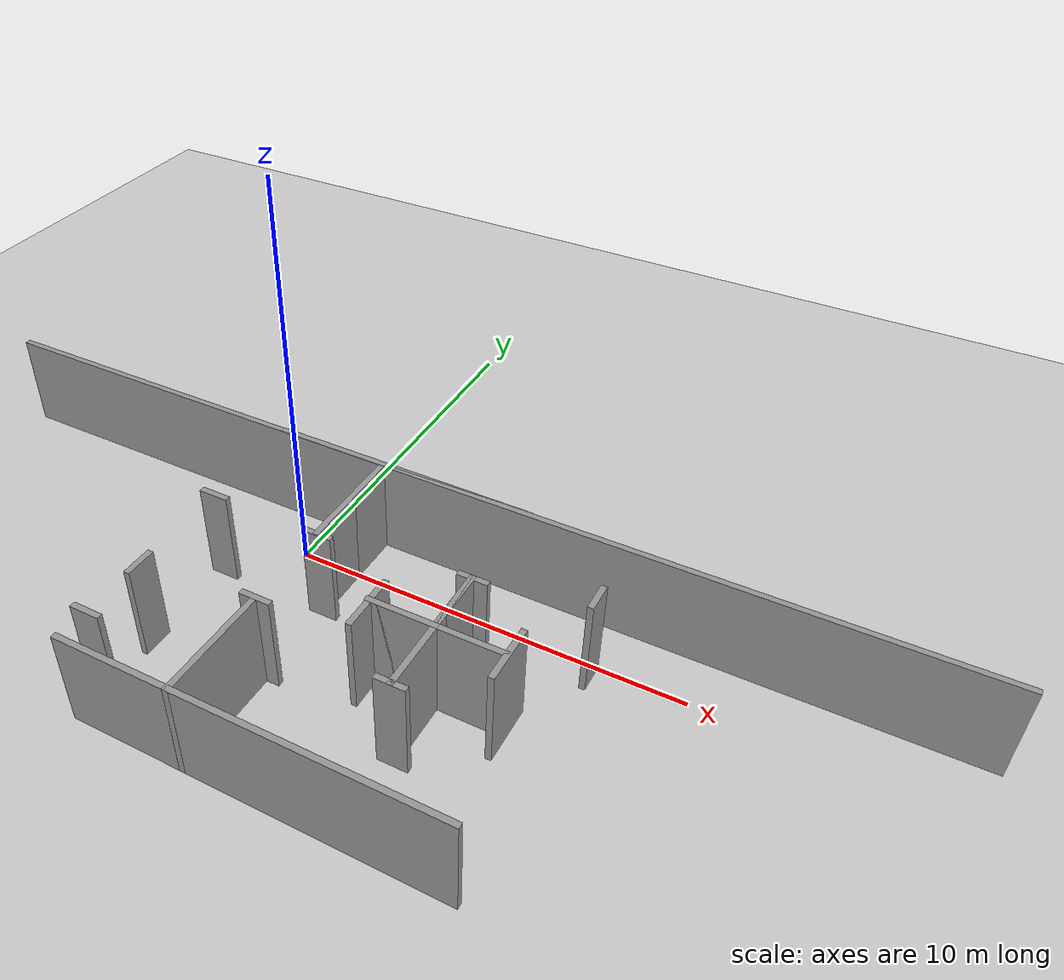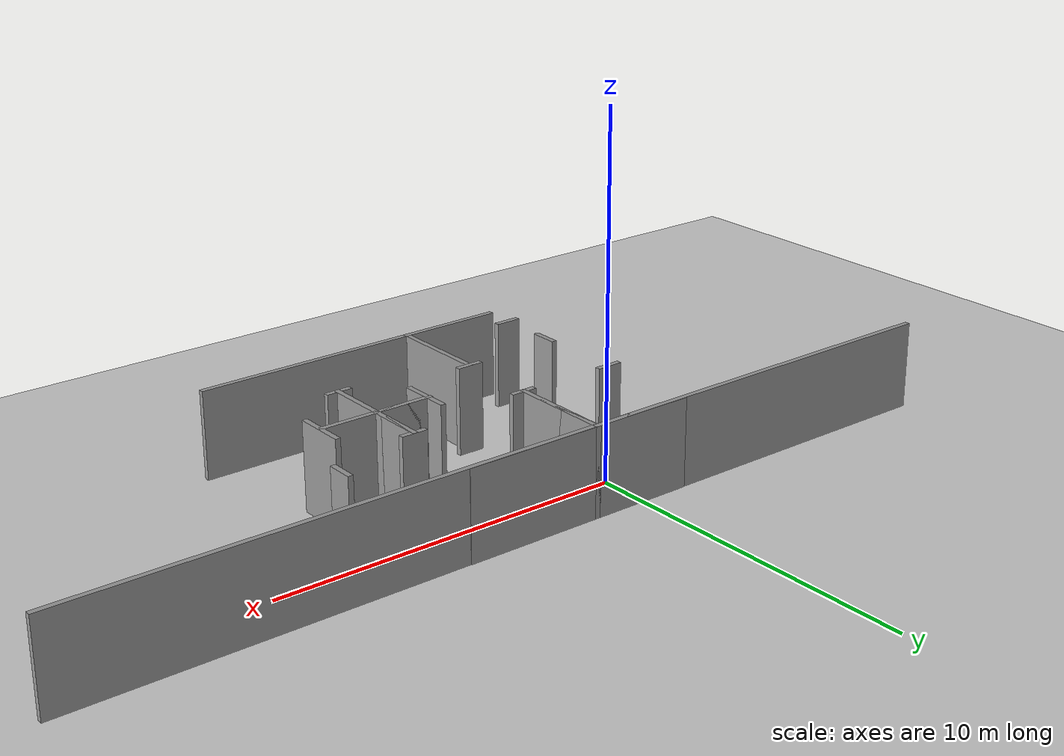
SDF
<sdf version="1.7">
 <world name="default">
  <model name="ground_plane">
   <static>1</static>
   <link name="link">
    <collision name="collision">
     <geometry><plane><normal>0 0 1</normal><size>100 100</size></plane></geometry>
     <surface>
      <contact><collide_bitmask>65535</collide_bitmask></contact>
      <friction><ode><mu>100</mu><mu2>50</mu2></ode></friction>
     </surface>
    </collision>
    <visual name="visual">
     <cast_shadows>0</cast_shadows>
     <geometry><plane><normal>0 0 1</normal><size>100 100</size></plane></geometry>
     <material>
      <script><uri>file://media/materials/scripts/gazebo.material</uri><name>Gazebo/Grey</name></script>
     </material>
    </visual>
   </link>
  </model>
  <model name="test_office_top">
   <link name="Wall_101">
    <pose>-2.48394 -1.15101 0 0 -0 0</pose>
    <visual name="Wall_101_Visual">
     <pose>0 0 1.25 0 -0 0</pose>
     <geometry><box><size>0.76749 0.15 2.5</size></box></geometry>
     <material>
      <script><uri>file://media/materials/scripts/gazebo.material</uri><name>Gazebo/Grey</name></script>
      <ambient>1 1 1 1</ambient>
      <shader type="pixel"/>
     </material>
     <meta><layer>0</layer></meta>
    </visual>
    <collision name="Wall_101_Collision">
     <pose>0 0 1.25 0 -0 0</pose>
     <geometry><box><size>0.76749 0.15 2.5</size></box></geometry>
     <surface>
      <friction>
       <ode><mu>1</mu><mu2>1</mu2><fdir1>0 0 0</fdir1><slip1>0</slip1><slip2>0</slip2></ode>
       <torsional>
        <coefficient>1</coefficient>
        <patch_radius>0</patch_radius>
        <surface_radius>0</surface_radius>
        <use_patch_radius>1</use_patch_radius>
        <ode><slip>0</slip></ode>
       </torsional>
      </friction>
      <bounce><restitution_coefficient>0</restitution_coefficient><threshold>1e+06</threshold></bounce>
      <contact>
       <collide_without_contact>0</collide_without_contact>
       <collide_without_contact_bitmask>1</collide_without_contact_bitmask>
       <collide_bitmask>1</collide_bitmask>
       <ode>
        <soft_cfm>0</soft_cfm>
        <soft_erp>0.2</soft_erp>
        <kp>1e+13</kp>
        <kd>1</kd>
        <max_vel>0.01</max_vel>
        <min_depth>0</min_depth>
       </ode>
       <bullet>
        <split_impulse>1</split_impulse>
        <split_impulse_penetration_threshold>-0.01</split_impulse_penetration_threshold>
        <soft_cfm>0</soft_cfm>
        <soft_erp>0.2</soft_erp>
        <kp>1e+13</kp>
        <kd>1</kd>
       </bullet>
      </contact>
     </surface>
    </collision>
   </link>
   <link name="Wall_103">
    <pose>-2.4752 1.15727 0 0 -0 0</pose>
    <visual name="Wall_103_Visual">
     <pose>0 0 1.25 0 -0 0</pose>
     <geometry><box><size>0.75 0.15 2.5</size></box></geometry>
     <material>
      <script><uri>file://media/materials/scripts/gazebo.material</uri><name>Gazebo/Grey</name></script>
      <ambient>1 1 1 1</ambient>
      <shader type="pixel"/>
     </material>
     <meta><layer>0</layer></meta>
    </visual>
    <collision name="Wall_103_Collision">
     <pose>0 0 1.25 0 -0 0</pose>
     <geometry><box><size>0.75 0.15 2.5</size></box></geometry>
     <surface>
      <friction>
       <ode><mu>1</mu><mu2>1</mu2><fdir1>0 0 0</fdir1><slip1>0</slip1><slip2>0</slip2></ode>
       <torsional>
        <coefficient>1</coefficient>
        <patch_radius>0</patch_radius>
        <surface_radius>0</surface_radius>
        <use_patch_radius>1</use_patch_radius>
        <ode><slip>0</slip></ode>
       </torsional>
      </friction>
      <bounce><restitution_coefficient>0</restitution_coefficient><threshold>1e+06</threshold></bounce>
      <contact>
       <collide_without_contact>0</collide_without_contact>
       <collide_without_contact_bitmask>1</collide_without_contact_bitmask>
       <collide_bitmask>1</collide_bitmask>
       <ode>
        <soft_cfm>0</soft_cfm>
        <soft_erp>0.2</soft_erp>
        <kp>1e+13</kp>
        <kd>1</kd>
        <max_vel>0.01</max_vel>
        <min_depth>0</min_depth>
       </ode>
       <bullet>
        <split_impulse>1</split_impulse>
        <split_impulse_penetration_threshold>-0.01</split_impulse_penetration_threshold>
        <soft_cfm>0</soft_cfm>
        <soft_erp>0.2</soft_erp>
        <kp>1e+13</kp>
        <kd>1</kd>
       </bullet>
      </contact>
     </surface>
    </collision>
   </link>
   <link name="Wall_164">
    <pose>0.681479 -4.01433 0 0 -0 0</pose>
    <visual name="Wall_164_Visual">
     <pose>0 0 1.25 0 -0 0</pose>
     <geometry><box><size>6.5 0.15 2.5</size></box></geometry>
     <material>
      <script><uri>file://media/materials/scripts/gazebo.material</uri><name>Gazebo/Grey</name></script>
      <ambient>1 1 1 1</ambient>
      <shader type="pixel"/>
     </material>
     <meta><layer>0</layer></meta>
    </visual>
    <collision name="Wall_164_Collision">
     <pose>0 0 1.25 0 -0 0</pose>
     <geometry><box><size>6.5 0.15 2.5</size></box></geometry>
     <surface>
      <friction>
       <ode><mu>1</mu><mu2>1</mu2><fdir1>0 0 0</fdir1><slip1>0</slip1><slip2>0</slip2></ode>
       <torsional>
        <coefficient>1</coefficient>
        <patch_radius>0</patch_radius>
        <surface_radius>0</surface_radius>
        <use_patch_radius>1</use_patch_radius>
        <ode><slip>0</slip></ode>
       </torsional>
      </friction>
      <bounce><restitution_coefficient>0</restitution_coefficient><threshold>1e+06</threshold></bounce>
      <contact>
       <collide_without_contact>0</collide_without_contact>
       <collide_without_contact_bitmask>1</collide_without_contact_bitmask>
       <collide_bitmask>1</collide_bitmask>
       <ode>
        <soft_cfm>0</soft_cfm>
        <soft_erp>0.2</soft_erp>
        <kp>1e+13</kp>
        <kd>1</kd>
        <max_vel>0.01</max_vel>
        <min_depth>0</min_depth>
       </ode>
       <bullet>
        <split_impulse>1</split_impulse>
        <split_impulse_penetration_threshold>-0.01</split_impulse_penetration_threshold>
        <soft_cfm>0</soft_cfm>
        <soft_erp>0.2</soft_erp>
        <kp>1e+13</kp>
        <kd>1</kd>
       </bullet>
      </contact>
     </surface>
    </collision>
   </link>
   <link name="Wall_170">
    <pose>-3.91852 -4.01433 0 0 -0 0</pose>
    <visual name="Wall_170_Visual">
     <pose>0 0 1.25 0 -0 0</pose>
     <geometry><box><size>3 0.15 2.5</size></box></geometry>
     <material>
      <script><uri>file://media/materials/scripts/gazebo.material</uri><name>Gazebo/Grey</name></script>
      <ambient>1 1 1 1</ambient>
      <shader type="pixel"/>
     </material>
     <meta><layer>0</layer></meta>
    </visual>
    <collision name="Wall_170_Collision">
     <pose>0 0 1.25 0 -0 0</pose>
     <geometry><box><size>3 0.15 2.5</size></box></geometry>
     <surface>
      <friction>
       <ode><mu>1</mu><mu2>1</mu2><fdir1>0 0 0</fdir1><slip1>0</slip1><slip2>0</slip2></ode>
       <torsional>
        <coefficient>1</coefficient>
        <patch_radius>0</patch_radius>
        <surface_radius>0</surface_radius>
        <use_patch_radius>1</use_patch_radius>
        <ode><slip>0</slip></ode>
       </torsional>
      </friction>
      <bounce><restitution_coefficient>0</restitution_coefficient><threshold>1e+06</threshold></bounce>
      <contact>
       <collide_without_contact>0</collide_without_contact>
       <collide_without_contact_bitmask>1</collide_without_contact_bitmask>
       <collide_bitmask>1</collide_bitmask>
       <ode>
        <soft_cfm>0</soft_cfm>
        <soft_erp>0.2</soft_erp>
        <kp>1e+13</kp>
        <kd>1</kd>
        <max_vel>0.01</max_vel>
        <min_depth>0</min_depth>
       </ode>
       <bullet>
        <split_impulse>1</split_impulse>
        <split_impulse_penetration_threshold>-0.01</split_impulse_penetration_threshold>
        <soft_cfm>0</soft_cfm>
        <soft_erp>0.2</soft_erp>
        <kp>1e+13</kp>
        <kd>1</kd>
       </bullet>
      </contact>
     </surface>
    </collision>
   </link>
   <link name="Wall_19">
    <pose>-3.92852 4.03566 0 0 -0 0</pose>
    <visual name="Wall_19_Visual">
     <pose>0 0 1.25 0 -0 0</pose>
     <geometry><box><size>3 0.15 2.5</size></box></geometry>
     <material>
      <script><uri>file://media/materials/scripts/gazebo.material</uri><name>Gazebo/Grey</name></script>
      <ambient>1 1 1 1</ambient>
      <shader type="pixel"/>
     </material>
     <meta><layer>0</layer></meta>
    </visual>
    <collision name="Wall_19_Collision">
     <pose>0 0 1.25 0 -0 0</pose>
     <geometry><box><size>3 0.15 2.5</size></box></geometry>
     <surface>
      <friction>
       <ode><mu>1</mu><mu2>1</mu2><fdir1>0 0 0</fdir1><slip1>0</slip1><slip2>0</slip2></ode>
       <torsional>
        <coefficient>1</coefficient>
        <patch_radius>0</patch_radius>
        <surface_radius>0</surface_radius>
        <use_patch_radius>1</use_patch_radius>
        <ode><slip>0</slip></ode>
       </torsional>
      </friction>
      <bounce><restitution_coefficient>0</restitution_coefficient><threshold>1e+06</threshold></bounce>
      <contact>
       <collide_without_contact>0</collide_without_contact>
       <collide_without_contact_bitmask>1</collide_without_contact_bitmask>
       <collide_bitmask>1</collide_bitmask>
       <ode>
        <soft_cfm>0</soft_cfm>
        <soft_erp>0.2</soft_erp>
        <kp>1e+13</kp>
        <kd>1</kd>
        <max_vel>0.01</max_vel>
        <min_depth>0</min_depth>
       </ode>
       <bullet>
        <split_impulse>1</split_impulse>
        <split_impulse_penetration_threshold>-0.01</split_impulse_penetration_threshold>
        <soft_cfm>0</soft_cfm>
        <soft_erp>0.2</soft_erp>
        <kp>1e+13</kp>
        <kd>1</kd>
       </bullet>
      </contact>
     </surface>
    </collision>
   </link>
   <link name="Wall_20">
    <pose>-2.50352 2.61067 0 0 0 -1.5708</pose>
    <visual name="Wall_20_Visual">
     <pose>0 0 1.25 0 -0 0</pose>
     <geometry><box><size>3 0.15 2.5</size></box></geometry>
     <material>
      <script><uri>file://media/materials/scripts/gazebo.material</uri><name>Gazebo/Grey</name></script>
      <ambient>1 1 1 1</ambient>
      <shader type="pixel"/>
     </material>
     <meta><layer>0</layer></meta>
    </visual>
    <collision name="Wall_20_Collision">
     <pose>0 0 1.25 0 -0 0</pose>
     <geometry><box><size>3 0.15 2.5</size></box></geometry>
     <surface>
      <friction>
       <ode><mu>1</mu><mu2>1</mu2><fdir1>0 0 0</fdir1><slip1>0</slip1><slip2>0</slip2></ode>
       <torsional>
        <coefficient>1</coefficient>
        <patch_radius>0</patch_radius>
        <surface_radius>0</surface_radius>
        <use_patch_radius>1</use_patch_radius>
        <ode><slip>0</slip></ode>
       </torsional>
      </friction>
      <bounce><restitution_coefficient>0</restitution_coefficient><threshold>1e+06</threshold></bounce>
      <contact>
       <collide_without_contact>0</collide_without_contact>
       <collide_without_contact_bitmask>1</collide_without_contact_bitmask>
       <collide_bitmask>1</collide_bitmask>
       <ode>
        <soft_cfm>0</soft_cfm>
        <soft_erp>0.2</soft_erp>
        <kp>1e+13</kp>
        <kd>1</kd>
        <max_vel>0.01</max_vel>
        <min_depth>0</min_depth>
       </ode>
       <bullet>
        <split_impulse>1</split_impulse>
        <split_impulse_penetration_threshold>-0.01</split_impulse_penetration_threshold>
        <soft_cfm>0</soft_cfm>
        <soft_erp>0.2</soft_erp>
        <kp>1e+13</kp>
        <kd>1</kd>
       </bullet>
      </contact>
     </surface>
    </collision>
   </link>
   <link name="Wall_21">
    <pose>-2.50352 2.61067 0 0 -0 1.5708</pose>
    <visual name="Wall_21_Visual">
     <pose>0 0 1.25 0 -0 0</pose>
     <geometry><box><size>3 0.15 2.5</size></box></geometry>
     <material>
      <script><uri>file://media/materials/scripts/gazebo.material</uri><name>Gazebo/Grey</name></script>
      <ambient>1 1 1 1</ambient>
      <shader type="pixel"/>
     </material>
     <meta><layer>0</layer></meta>
    </visual>
    <collision name="Wall_21_Collision">
     <pose>0 0 1.25 0 -0 0</pose>
     <geometry><box><size>3 0.15 2.5</size></box></geometry>
     <surface>
      <friction>
       <ode><mu>1</mu><mu2>1</mu2><fdir1>0 0 0</fdir1><slip1>0</slip1><slip2>0</slip2></ode>
       <torsional>
        <coefficient>1</coefficient>
        <patch_radius>0</patch_radius>
        <surface_radius>0</surface_radius>
        <use_patch_radius>1</use_patch_radius>
        <ode><slip>0</slip></ode>
       </torsional>
      </friction>
      <bounce><restitution_coefficient>0</restitution_coefficient><threshold>1e+06</threshold></bounce>
      <contact>
       <collide_without_contact>0</collide_without_contact>
       <collide_without_contact_bitmask>1</collide_without_contact_bitmask>
       <collide_bitmask>1</collide_bitmask>
       <ode>
        <soft_cfm>0</soft_cfm>
        <soft_erp>0.2</soft_erp>
        <kp>1e+13</kp>
        <kd>1</kd>
        <max_vel>0.01</max_vel>
        <min_depth>0</min_depth>
       </ode>
       <bullet>
        <split_impulse>1</split_impulse>
        <split_impulse_penetration_threshold>-0.01</split_impulse_penetration_threshold>
        <soft_cfm>0</soft_cfm>
        <soft_erp>0.2</soft_erp>
        <kp>1e+13</kp>
        <kd>1</kd>
       </bullet>
      </contact>
     </surface>
    </collision>
   </link>
   <link name="Wall_223">
    <pose>-0.578521 4.03566 0 0 -0 0</pose>
    <visual name="Wall_223_Visual">
     <pose>0 0 1.25 0 -0 0</pose>
     <geometry><box><size>4 0.15 2.5</size></box></geometry>
     <material>
      <script><uri>file://media/materials/scripts/gazebo.material</uri><name>Gazebo/Grey</name></script>
      <ambient>1 1 1 1</ambient>
      <shader type="pixel"/>
     </material>
     <meta><layer>0</layer></meta>
    </visual>
    <collision name="Wall_223_Collision">
     <pose>0 0 1.25 0 -0 0</pose>
     <geometry><box><size>4 0.15 2.5</size></box></geometry>
     <surface>
      <friction>
       <ode><mu>1</mu><mu2>1</mu2><fdir1>0 0 0</fdir1><slip1>0</slip1><slip2>0</slip2></ode>
       <torsional>
        <coefficient>1</coefficient>
        <patch_radius>0</patch_radius>
        <surface_radius>0</surface_radius>
        <use_patch_radius>1</use_patch_radius>
        <ode><slip>0</slip></ode>
       </torsional>
      </friction>
      <bounce><restitution_coefficient>0</restitution_coefficient><threshold>1e+06</threshold></bounce>
      <contact>
       <collide_without_contact>0</collide_without_contact>
       <collide_without_contact_bitmask>1</collide_without_contact_bitmask>
       <collide_bitmask>1</collide_bitmask>
       <ode>
        <soft_cfm>0</soft_cfm>
        <soft_erp>0.2</soft_erp>
        <kp>1e+13</kp>
        <kd>1</kd>
        <max_vel>0.01</max_vel>
        <min_depth>0</min_depth>
       </ode>
       <bullet>
        <split_impulse>1</split_impulse>
        <split_impulse_penetration_threshold>-0.01</split_impulse_penetration_threshold>
        <soft_cfm>0</soft_cfm>
        <soft_erp>0.2</soft_erp>
        <kp>1e+13</kp>
        <kd>1</kd>
       </bullet>
      </contact>
     </surface>
    </collision>
   </link>
   <link name="Wall_311">
    <pose>1.20731 0.748989 0 0 -0 1.5708</pose>
    <visual name="Wall_311_Visual">
     <pose>0 0 1.25 0 -0 0</pose>
     <geometry><box><size>1.75 0.15 2.5</size></box></geometry>
     <material>
      <script><uri>file://media/materials/scripts/gazebo.material</uri><name>Gazebo/Grey</name></script>
      <ambient>1 1 1 1</ambient>
      <shader type="pixel"/>
     </material>
     <meta><layer>0</layer></meta>
    </visual>
    <collision name="Wall_311_Collision">
     <pose>0 0 1.25 0 -0 0</pose>
     <geometry><box><size>1.75 0.15 2.5</size></box></geometry>
     <surface>
      <friction>
       <ode><mu>1</mu><mu2>1</mu2><fdir1>0 0 0</fdir1><slip1>0</slip1><slip2>0</slip2></ode>
       <torsional>
        <coefficient>1</coefficient>
        <patch_radius>0</patch_radius>
        <surface_radius>0</surface_radius>
        <use_patch_radius>1</use_patch_radius>
        <ode><slip>0</slip></ode>
       </torsional>
      </friction>
      <bounce><restitution_coefficient>0</restitution_coefficient><threshold>1e+06</threshold></bounce>
      <contact>
       <collide_without_contact>0</collide_without_contact>
       <collide_without_contact_bitmask>1</collide_without_contact_bitmask>
       <collide_bitmask>1</collide_bitmask>
       <ode>
        <soft_cfm>0</soft_cfm>
        <soft_erp>0.2</soft_erp>
        <kp>1e+13</kp>
        <kd>1</kd>
        <max_vel>0.01</max_vel>
        <min_depth>0</min_depth>
       </ode>
       <bullet>
        <split_impulse>1</split_impulse>
        <split_impulse_penetration_threshold>-0.01</split_impulse_penetration_threshold>
        <soft_cfm>0</soft_cfm>
        <soft_erp>0.2</soft_erp>
        <kp>1e+13</kp>
        <kd>1</kd>
       </bullet>
      </contact>
     </surface>
    </collision>
   </link>
   <link name="Wall_312">
    <pose>1.20731 -0.126011 0 0 0 -1.5708</pose>
    <visual name="Wall_312_Visual">
     <pose>0 0 1.25 0 -0 0</pose>
     <geometry><box><size>3.5 0.15 2.5</size></box></geometry>
     <material>
      <script><uri>file://media/materials/scripts/gazebo.material</uri><name>Gazebo/Grey</name></script>
      <ambient>1 1 1 1</ambient>
      <shader type="pixel"/>
     </material>
     <meta><layer>0</layer></meta>
    </visual>
    <collision name="Wall_312_Collision">
     <pose>0 0 1.25 0 -0 0</pose>
     <geometry><box><size>3.5 0.15 2.5</size></box></geometry>
     <surface>
      <friction>
       <ode><mu>1</mu><mu2>1</mu2><fdir1>0 0 0</fdir1><slip1>0</slip1><slip2>0</slip2></ode>
       <torsional>
        <coefficient>1</coefficient>
        <patch_radius>0</patch_radius>
        <surface_radius>0</surface_radius>
        <use_patch_radius>1</use_patch_radius>
        <ode><slip>0</slip></ode>
       </torsional>
      </friction>
      <bounce><restitution_coefficient>0</restitution_coefficient><threshold>1e+06</threshold></bounce>
      <contact>
       <collide_without_contact>0</collide_without_contact>
       <collide_without_contact_bitmask>1</collide_without_contact_bitmask>
       <collide_bitmask>1</collide_bitmask>
       <ode>
        <soft_cfm>0</soft_cfm>
        <soft_erp>0.2</soft_erp>
        <kp>1e+13</kp>
        <kd>1</kd>
        <max_vel>0.01</max_vel>
        <min_depth>0</min_depth>
       </ode>
       <bullet>
        <split_impulse>1</split_impulse>
        <split_impulse_penetration_threshold>-0.01</split_impulse_penetration_threshold>
        <soft_cfm>0</soft_cfm>
        <soft_erp>0.2</soft_erp>
        <kp>1e+13</kp>
        <kd>1</kd>
       </bullet>
      </contact>
     </surface>
    </collision>
   </link>
   <link name="Wall_314">
    <pose>1.20731 0.748989 0 0 0 -1.5708</pose>
    <visual name="Wall_314_Visual">
     <pose>0 0 1.25 0 -0 0</pose>
     <geometry><box><size>1.75 0.15 2.5</size></box></geometry>
     <material>
      <script><uri>file://media/materials/scripts/gazebo.material</uri><name>Gazebo/Grey</name></script>
      <ambient>1 1 1 1</ambient>
      <shader type="pixel"/>
     </material>
     <meta><layer>0</layer></meta>
    </visual>
    <collision name="Wall_314_Collision">
     <pose>0 0 1.25 0 -0 0</pose>
     <geometry><box><size>1.75 0.15 2.5</size></box></geometry>
     <surface>
      <friction>
       <ode><mu>1</mu><mu2>1</mu2><fdir1>0 0 0</fdir1><slip1>0</slip1><slip2>0</slip2></ode>
       <torsional>
        <coefficient>1</coefficient>
        <patch_radius>0</patch_radius>
        <surface_radius>0</surface_radius>
        <use_patch_radius>1</use_patch_radius>
        <ode><slip>0</slip></ode>
       </torsional>
      </friction>
      <bounce><restitution_coefficient>0</restitution_coefficient><threshold>1e+06</threshold></bounce>
      <contact>
       <collide_without_contact>0</collide_without_contact>
       <collide_without_contact_bitmask>1</collide_without_contact_bitmask>
       <collide_bitmask>1</collide_bitmask>
       <ode>
        <soft_cfm>0</soft_cfm>
        <soft_erp>0.2</soft_erp>
        <kp>1e+13</kp>
        <kd>1</kd>
        <max_vel>0.01</max_vel>
        <min_depth>0</min_depth>
       </ode>
       <bullet>
        <split_impulse>1</split_impulse>
        <split_impulse_penetration_threshold>-0.01</split_impulse_penetration_threshold>
        <soft_cfm>0</soft_cfm>
        <soft_erp>0.2</soft_erp>
        <kp>1e+13</kp>
        <kd>1</kd>
       </bullet>
      </contact>
     </surface>
    </collision>
   </link>
   <link name="Wall_315">
    <pose>0.407314 -0.051011 0 0 -0 3.14159</pose>
    <visual name="Wall_315_Visual">
     <pose>0 0 1.25 0 -0 0</pose>
     <geometry><box><size>1.75 0.15 2.5</size></box></geometry>
     <material>
      <script><uri>file://media/materials/scripts/gazebo.material</uri><name>Gazebo/Grey</name></script>
      <ambient>1 1 1 1</ambient>
      <shader type="pixel"/>
     </material>
     <meta><layer>0</layer></meta>
    </visual>
    <collision name="Wall_315_Collision">
     <pose>0 0 1.25 0 -0 0</pose>
     <geometry><box><size>1.75 0.15 2.5</size></box></geometry>
     <surface>
      <friction>
       <ode><mu>1</mu><mu2>1</mu2><fdir1>0 0 0</fdir1><slip1>0</slip1><slip2>0</slip2></ode>
       <torsional>
        <coefficient>1</coefficient>
        <patch_radius>0</patch_radius>
        <surface_radius>0</surface_radius>
        <use_patch_radius>1</use_patch_radius>
        <ode><slip>0</slip></ode>
       </torsional>
      </friction>
      <bounce><restitution_coefficient>0</restitution_coefficient><threshold>1e+06</threshold></bounce>
      <contact>
       <collide_without_contact>0</collide_without_contact>
       <collide_without_contact_bitmask>1</collide_without_contact_bitmask>
       <collide_bitmask>1</collide_bitmask>
       <ode>
        <soft_cfm>0</soft_cfm>
        <soft_erp>0.2</soft_erp>
        <kp>1e+13</kp>
        <kd>1</kd>
        <max_vel>0.01</max_vel>
        <min_depth>0</min_depth>
       </ode>
       <bullet>
        <split_impulse>1</split_impulse>
        <split_impulse_penetration_threshold>-0.01</split_impulse_penetration_threshold>
        <soft_cfm>0</soft_cfm>
        <soft_erp>0.2</soft_erp>
        <kp>1e+13</kp>
        <kd>1</kd>
       </bullet>
      </contact>
     </surface>
    </collision>
   </link>
   <link name="Wall_316">
    <pose>0.407314 -0.051011 0 0 -0 0</pose>
    <visual name="Wall_316_Visual">
     <pose>0 0 1.25 0 -0 0</pose>
     <geometry><box><size>1.75 0.15 2.5</size></box></geometry>
     <material>
      <script><uri>file://media/materials/scripts/gazebo.material</uri><name>Gazebo/Grey</name></script>
      <ambient>1 1 1 1</ambient>
      <shader type="pixel"/>
     </material>
     <meta><layer>0</layer></meta>
    </visual>
    <collision name="Wall_316_Collision">
     <pose>0 0 1.25 0 -0 0</pose>
     <geometry><box><size>1.75 0.15 2.5</size></box></geometry>
     <surface>
      <friction>
       <ode><mu>1</mu><mu2>1</mu2><fdir1>0 0 0</fdir1><slip1>0</slip1><slip2>0</slip2></ode>
       <torsional>
        <coefficient>1</coefficient>
        <patch_radius>0</patch_radius>
        <surface_radius>0</surface_radius>
        <use_patch_radius>1</use_patch_radius>
        <ode><slip>0</slip></ode>
       </torsional>
      </friction>
      <bounce><restitution_coefficient>0</restitution_coefficient><threshold>1e+06</threshold></bounce>
      <contact>
       <collide_without_contact>0</collide_without_contact>
       <collide_without_contact_bitmask>1</collide_without_contact_bitmask>
       <collide_bitmask>1</collide_bitmask>
       <ode>
        <soft_cfm>0</soft_cfm>
        <soft_erp>0.2</soft_erp>
        <kp>1e+13</kp>
        <kd>1</kd>
        <max_vel>0.01</max_vel>
        <min_depth>0</min_depth>
       </ode>
       <bullet>
        <split_impulse>1</split_impulse>
        <split_impulse_penetration_threshold>-0.01</split_impulse_penetration_threshold>
        <soft_cfm>0</soft_cfm>
        <soft_erp>0.2</soft_erp>
        <kp>1e+13</kp>
        <kd>1</kd>
       </bullet>
      </contact>
     </surface>
    </collision>
   </link>
   <link name="Wall_317">
    <pose>2.00731 -0.051011 0 0 -0 0</pose>
    <visual name="Wall_317_Visual">
     <pose>0 0 1.25 0 -0 0</pose>
     <geometry><box><size>1.75 0.15 2.5</size></box></geometry>
     <material>
      <script><uri>file://media/materials/scripts/gazebo.material</uri><name>Gazebo/Grey</name></script>
      <ambient>1 1 1 1</ambient>
      <shader type="pixel"/>
     </material>
     <meta><layer>0</layer></meta>
    </visual>
    <collision name="Wall_317_Collision">
     <pose>0 0 1.25 0 -0 0</pose>
     <geometry><box><size>1.75 0.15 2.5</size></box></geometry>
     <surface>
      <friction>
       <ode><mu>1</mu><mu2>1</mu2><fdir1>0 0 0</fdir1><slip1>0</slip1><slip2>0</slip2></ode>
       <torsional>
        <coefficient>1</coefficient>
        <patch_radius>0</patch_radius>
        <surface_radius>0</surface_radius>
        <use_patch_radius>1</use_patch_radius>
        <ode><slip>0</slip></ode>
       </torsional>
      </friction>
      <bounce><restitution_coefficient>0</restitution_coefficient><threshold>1e+06</threshold></bounce>
      <contact>
       <collide_without_contact>0</collide_without_contact>
       <collide_without_contact_bitmask>1</collide_without_contact_bitmask>
       <collide_bitmask>1</collide_bitmask>
       <ode>
        <soft_cfm>0</soft_cfm>
        <soft_erp>0.2</soft_erp>
        <kp>1e+13</kp>
        <kd>1</kd>
        <max_vel>0.01</max_vel>
        <min_depth>0</min_depth>
       </ode>
       <bullet>
        <split_impulse>1</split_impulse>
        <split_impulse_penetration_threshold>-0.01</split_impulse_penetration_threshold>
        <soft_cfm>0</soft_cfm>
        <soft_erp>0.2</soft_erp>
        <kp>1e+13</kp>
        <kd>1</kd>
       </bullet>
      </contact>
     </surface>
    </collision>
   </link>
   <link name="Wall_320">
    <pose>-0.35967 -0.14194 0 0 0 -1.5708</pose>
    <visual name="Wall_320_Visual">
     <pose>0 0 1.25 0 -0 0</pose>
     <geometry><box><size>1.5 0.15 2.5</size></box></geometry>
     <material>
      <script><uri>file://media/materials/scripts/gazebo.material</uri><name>Gazebo/Grey</name></script>
      <ambient>1 1 1 1</ambient>
      <shader type="pixel"/>
     </material>
     <meta><layer>0</layer></meta>
    </visual>
    <collision name="Wall_320_Collision">
     <pose>0 0 1.25 0 -0 0</pose>
     <geometry><box><size>1.5 0.15 2.5</size></box></geometry>
     <surface>
      <friction>
       <ode><mu>1</mu><mu2>1</mu2><fdir1>0 0 0</fdir1><slip1>0</slip1><slip2>0</slip2></ode>
       <torsional>
        <coefficient>1</coefficient>
        <patch_radius>0</patch_radius>
        <surface_radius>0</surface_radius>
        <use_patch_radius>1</use_patch_radius>
        <ode><slip>0</slip></ode>
       </torsional>
      </friction>
      <bounce><restitution_coefficient>0</restitution_coefficient><threshold>1e+06</threshold></bounce>
      <contact>
       <collide_without_contact>0</collide_without_contact>
       <collide_without_contact_bitmask>1</collide_without_contact_bitmask>
       <collide_bitmask>1</collide_bitmask>
       <ode>
        <soft_cfm>0</soft_cfm>
        <soft_erp>0.2</soft_erp>
        <kp>1e+13</kp>
        <kd>1</kd>
        <max_vel>0.01</max_vel>
        <min_depth>0</min_depth>
       </ode>
       <bullet>
        <split_impulse>1</split_impulse>
        <split_impulse_penetration_threshold>-0.01</split_impulse_penetration_threshold>
        <soft_cfm>0</soft_cfm>
        <soft_erp>0.2</soft_erp>
        <kp>1e+13</kp>
        <kd>1</kd>
       </bullet>
      </contact>
     </surface>
    </collision>
   </link>
   <link name="Wall_322">
    <pose>2.85434 -0.023342 0 0 0 -1.5708</pose>
    <visual name="Wall_322_Visual">
     <pose>0 0 1.25 0 -0 0</pose>
     <geometry><box><size>1.5 0.15 2.5</size></box></geometry>
     <material>
      <script><uri>file://media/materials/scripts/gazebo.material</uri><name>Gazebo/Grey</name></script>
      <ambient>1 1 1 1</ambient>
      <shader type="pixel"/>
     </material>
     <meta><layer>0</layer></meta>
    </visual>
    <collision name="Wall_322_Collision">
     <pose>0 0 1.25 0 -0 0</pose>
     <geometry><box><size>1.5 0.15 2.5</size></box></geometry>
     <surface>
      <friction>
       <ode><mu>1</mu><mu2>1</mu2><fdir1>0 0 0</fdir1><slip1>0</slip1><slip2>0</slip2></ode>
       <torsional>
        <coefficient>1</coefficient>
        <patch_radius>0</patch_radius>
        <surface_radius>0</surface_radius>
        <use_patch_radius>1</use_patch_radius>
        <ode><slip>0</slip></ode>
       </torsional>
      </friction>
      <bounce><restitution_coefficient>0</restitution_coefficient><threshold>1e+06</threshold></bounce>
      <contact>
       <collide_without_contact>0</collide_without_contact>
       <collide_without_contact_bitmask>1</collide_without_contact_bitmask>
       <collide_bitmask>1</collide_bitmask>
       <ode>
        <soft_cfm>0</soft_cfm>
        <soft_erp>0.2</soft_erp>
        <kp>1e+13</kp>
        <kd>1</kd>
        <max_vel>0.01</max_vel>
        <min_depth>0</min_depth>
       </ode>
       <bullet>
        <split_impulse>1</split_impulse>
        <split_impulse_penetration_threshold>-0.01</split_impulse_penetration_threshold>
        <soft_cfm>0</soft_cfm>
        <soft_erp>0.2</soft_erp>
        <kp>1e+13</kp>
        <kd>1</kd>
       </bullet>
      </contact>
     </surface>
    </collision>
   </link>
   <link name="Wall_324">
    <pose>1.23305 1.56486 0 0 -0 0</pose>
    <visual name="Wall_324_Visual">
     <pose>0 0 1.25 0 -0 0</pose>
     <geometry><box><size>0.75 0.15 2.5</size></box></geometry>
     <material>
      <script><uri>file://media/materials/scripts/gazebo.material</uri><name>Gazebo/Grey</name></script>
      <ambient>1 1 1 1</ambient>
      <shader type="pixel"/>
     </material>
     <meta><layer>0</layer></meta>
    </visual>
    <collision name="Wall_324_Collision">
     <pose>0 0 1.25 0 -0 0</pose>
     <geometry><box><size>0.75 0.15 2.5</size></box></geometry>
     <surface>
      <friction>
       <ode><mu>1</mu><mu2>1</mu2><fdir1>0 0 0</fdir1><slip1>0</slip1><slip2>0</slip2></ode>
       <torsional>
        <coefficient>1</coefficient>
        <patch_radius>0</patch_radius>
        <surface_radius>0</surface_radius>
        <use_patch_radius>1</use_patch_radius>
        <ode><slip>0</slip></ode>
       </torsional>
      </friction>
      <bounce><restitution_coefficient>0</restitution_coefficient><threshold>1e+06</threshold></bounce>
      <contact>
       <collide_without_contact>0</collide_without_contact>
       <collide_without_contact_bitmask>1</collide_without_contact_bitmask>
       <collide_bitmask>1</collide_bitmask>
       <ode>
        <soft_cfm>0</soft_cfm>
        <soft_erp>0.2</soft_erp>
        <kp>1e+13</kp>
        <kd>1</kd>
        <max_vel>0.01</max_vel>
        <min_depth>0</min_depth>
       </ode>
       <bullet>
        <split_impulse>1</split_impulse>
        <split_impulse_penetration_threshold>-0.01</split_impulse_penetration_threshold>
        <soft_cfm>0</soft_cfm>
        <soft_erp>0.2</soft_erp>
        <kp>1e+13</kp>
        <kd>1</kd>
       </bullet>
      </contact>
     </surface>
    </collision>
   </link>
   <link name="Wall_326">
    <pose>1.19747 -1.80332 0 0 -0 0</pose>
    <visual name="Wall_326_Visual">
     <pose>0 0 1.25 0 -0 0</pose>
     <geometry><box><size>0.75 0.15 2.5</size></box></geometry>
     <material>
      <script><uri>file://media/materials/scripts/gazebo.material</uri><name>Gazebo/Grey</name></script>
      <ambient>1 1 1 1</ambient>
      <shader type="pixel"/>
     </material>
     <meta><layer>0</layer></meta>
    </visual>
    <collision name="Wall_326_Collision">
     <pose>0 0 1.25 0 -0 0</pose>
     <geometry><box><size>0.75 0.15 2.5</size></box></geometry>
     <surface>
      <friction>
       <ode><mu>1</mu><mu2>1</mu2><fdir1>0 0 0</fdir1><slip1>0</slip1><slip2>0</slip2></ode>
       <torsional>
        <coefficient>1</coefficient>
        <patch_radius>0</patch_radius>
        <surface_radius>0</surface_radius>
        <use_patch_radius>1</use_patch_radius>
        <ode><slip>0</slip></ode>
       </torsional>
      </friction>
      <bounce><restitution_coefficient>0</restitution_coefficient><threshold>1e+06</threshold></bounce>
      <contact>
       <collide_without_contact>0</collide_without_contact>
       <collide_without_contact_bitmask>1</collide_without_contact_bitmask>
       <collide_bitmask>1</collide_bitmask>
       <ode>
        <soft_cfm>0</soft_cfm>
        <soft_erp>0.2</soft_erp>
        <kp>1e+13</kp>
        <kd>1</kd>
        <max_vel>0.01</max_vel>
        <min_depth>0</min_depth>
       </ode>
       <bullet>
        <split_impulse>1</split_impulse>
        <split_impulse_penetration_threshold>-0.01</split_impulse_penetration_threshold>
        <soft_cfm>0</soft_cfm>
        <soft_erp>0.2</soft_erp>
        <kp>1e+13</kp>
        <kd>1</kd>
       </bullet>
      </contact>
     </surface>
    </collision>
   </link>
   <link name="Wall_35">
    <pose>-2.49352 -2.58934 0 0 -0 1.5708</pose>
    <visual name="Wall_35_Visual">
     <pose>0 0 1.25 0 -0 0</pose>
     <geometry><box><size>3 0.15 2.5</size></box></geometry>
     <material>
      <script><uri>file://media/materials/scripts/gazebo.material</uri><name>Gazebo/Grey</name></script>
      <ambient>1 1 1 1</ambient>
      <shader type="pixel"/>
     </material>
     <meta><layer>0</layer></meta>
    </visual>
    <collision name="Wall_35_Collision">
     <pose>0 0 1.25 0 -0 0</pose>
     <geometry><box><size>3 0.15 2.5</size></box></geometry>
     <surface>
      <friction>
       <ode><mu>1</mu><mu2>1</mu2><fdir1>0 0 0</fdir1><slip1>0</slip1><slip2>0</slip2></ode>
       <torsional>
        <coefficient>1</coefficient>
        <patch_radius>0</patch_radius>
        <surface_radius>0</surface_radius>
        <use_patch_radius>1</use_patch_radius>
        <ode><slip>0</slip></ode>
       </torsional>
      </friction>
      <bounce><restitution_coefficient>0</restitution_coefficient><threshold>1e+06</threshold></bounce>
      <contact>
       <collide_without_contact>0</collide_without_contact>
       <collide_without_contact_bitmask>1</collide_without_contact_bitmask>
       <collide_bitmask>1</collide_bitmask>
       <ode>
        <soft_cfm>0</soft_cfm>
        <soft_erp>0.2</soft_erp>
        <kp>1e+13</kp>
        <kd>1</kd>
        <max_vel>0.01</max_vel>
        <min_depth>0</min_depth>
       </ode>
       <bullet>
        <split_impulse>1</split_impulse>
        <split_impulse_penetration_threshold>-0.01</split_impulse_penetration_threshold>
        <soft_cfm>0</soft_cfm>
        <soft_erp>0.2</soft_erp>
        <kp>1e+13</kp>
        <kd>1</kd>
       </bullet>
      </contact>
     </surface>
    </collision>
   </link>
   <link name="Wall_364">
    <pose>-0.850132 4.01984 0 0 -0 3.14159</pose>
    <visual name="Wall_364_Visual">
     <pose>0 0 1.25 0 -0 0</pose>
     <geometry><box><size>26.25 0.15 2.5</size></box></geometry>
     <material>
      <script><uri>file://media/materials/scripts/gazebo.material</uri><name>Gazebo/Grey</name></script>
      <ambient>1 1 1 1</ambient>
      <shader type="pixel"/>
     </material>
     <meta><layer>0</layer></meta>
    </visual>
    <collision name="Wall_364_Collision">
     <pose>0 0 1.25 0 -0 0</pose>
     <geometry><box><size>26.25 0.15 2.5</size></box></geometry>
     <surface>
      <friction>
       <ode><mu>1</mu><mu2>1</mu2><fdir1>0 0 0</fdir1><slip1>0</slip1><slip2>0</slip2></ode>
       <torsional>
        <coefficient>1</coefficient>
        <patch_radius>0</patch_radius>
        <surface_radius>0</surface_radius>
        <use_patch_radius>1</use_patch_radius>
        <ode><slip>0</slip></ode>
       </torsional>
      </friction>
      <bounce><restitution_coefficient>0</restitution_coefficient><threshold>1e+06</threshold></bounce>
      <contact>
       <collide_without_contact>0</collide_without_contact>
       <collide_without_contact_bitmask>1</collide_without_contact_bitmask>
       <collide_bitmask>1</collide_bitmask>
       <ode>
        <soft_cfm>0</soft_cfm>
        <soft_erp>0.2</soft_erp>
        <kp>1e+13</kp>
        <kd>1</kd>
        <max_vel>0.01</max_vel>
        <min_depth>0</min_depth>
       </ode>
       <bullet>
        <split_impulse>1</split_impulse>
        <split_impulse_penetration_threshold>-0.01</split_impulse_penetration_threshold>
        <soft_cfm>0</soft_cfm>
        <soft_erp>0.2</soft_erp>
        <kp>1e+13</kp>
        <kd>1</kd>
       </bullet>
      </contact>
     </surface>
    </collision>
   </link>
   <link name="Wall_371">
    <pose>3.7794 2.30853 0 0 0 -1.5708</pose>
    <visual name="Wall_371_Visual">
     <pose>0 0 1.25 0 -0 0</pose>
     <geometry><box><size>0.75 0.15 2.5</size></box></geometry>
     <material>
      <script><uri>file://media/materials/scripts/gazebo.material</uri><name>Gazebo/Grey</name></script>
      <ambient>1 1 1 1</ambient>
      <shader type="pixel"/>
     </material>
     <meta><layer>0</layer></meta>
    </visual>
    <collision name="Wall_371_Collision">
     <pose>0 0 1.25 0 -0 0</pose>
     <geometry><box><size>0.75 0.15 2.5</size></box></geometry>
     <surface>
      <friction>
       <ode><mu>1</mu><mu2>1</mu2><fdir1>0 0 0</fdir1><slip1>0</slip1><slip2>0</slip2></ode>
       <torsional>
        <coefficient>1</coefficient>
        <patch_radius>0</patch_radius>
        <surface_radius>0</surface_radius>
        <use_patch_radius>1</use_patch_radius>
        <ode><slip>0</slip></ode>
       </torsional>
      </friction>
      <bounce><restitution_coefficient>0</restitution_coefficient><threshold>1e+06</threshold></bounce>
      <contact>
       <collide_without_contact>0</collide_without_contact>
       <collide_without_contact_bitmask>1</collide_without_contact_bitmask>
       <collide_bitmask>1</collide_bitmask>
       <ode>
        <soft_cfm>0</soft_cfm>
        <soft_erp>0.2</soft_erp>
        <kp>1e+13</kp>
        <kd>1</kd>
        <max_vel>0.01</max_vel>
        <min_depth>0</min_depth>
       </ode>
       <bullet>
        <split_impulse>1</split_impulse>
        <split_impulse_penetration_threshold>-0.01</split_impulse_penetration_threshold>
        <soft_cfm>0</soft_cfm>
        <soft_erp>0.2</soft_erp>
        <kp>1e+13</kp>
        <kd>1</kd>
       </bullet>
      </contact>
     </surface>
    </collision>
   </link>
   <link name="Wall_51">
    <pose>-5.34118 1.17559 0 0 -0 0</pose>
    <visual name="Wall_51_Visual">
     <pose>0 0 1.25 0 -0 0</pose>
     <geometry><box><size>0.75 0.15 2.5</size></box></geometry>
     <material>
      <script><uri>file://media/materials/scripts/gazebo.material</uri><name>Gazebo/Grey</name></script>
      <ambient>1 1 1 1</ambient>
      <shader type="pixel"/>
     </material>
     <meta><layer>0</layer></meta>
    </visual>
    <collision name="Wall_51_Collision">
     <pose>0 0 1.25 0 -0 0</pose>
     <geometry><box><size>0.75 0.15 2.5</size></box></geometry>
     <surface>
      <friction>
       <ode><mu>1</mu><mu2>1</mu2><fdir1>0 0 0</fdir1><slip1>0</slip1><slip2>0</slip2></ode>
       <torsional>
        <coefficient>1</coefficient>
        <patch_radius>0</patch_radius>
        <surface_radius>0</surface_radius>
        <use_patch_radius>1</use_patch_radius>
        <ode><slip>0</slip></ode>
       </torsional>
      </friction>
      <bounce><restitution_coefficient>0</restitution_coefficient><threshold>1e+06</threshold></bounce>
      <contact>
       <collide_without_contact>0</collide_without_contact>
       <collide_without_contact_bitmask>1</collide_without_contact_bitmask>
       <collide_bitmask>1</collide_bitmask>
       <ode>
        <soft_cfm>0</soft_cfm>
        <soft_erp>0.2</soft_erp>
        <kp>1e+13</kp>
        <kd>1</kd>
        <max_vel>0.01</max_vel>
        <min_depth>0</min_depth>
       </ode>
       <bullet>
        <split_impulse>1</split_impulse>
        <split_impulse_penetration_threshold>-0.01</split_impulse_penetration_threshold>
        <soft_cfm>0</soft_cfm>
        <soft_erp>0.2</soft_erp>
        <kp>1e+13</kp>
        <kd>1</kd>
       </bullet>
      </contact>
     </surface>
    </collision>
   </link>
   <link name="Wall_70">
    <pose>-5.34352 -1.48934 0 0 -0 1.5708</pose>
    <visual name="Wall_70_Visual">
     <pose>0 0 1.25 0 -0 0</pose>
     <geometry><box><size>0.8 0.15 2.5</size></box></geometry>
     <material>
      <script><uri>file://media/materials/scripts/gazebo.material</uri><name>Gazebo/Grey</name></script>
      <ambient>1 1 1 1</ambient>
      <shader type="pixel"/>
     </material>
     <meta><layer>0</layer></meta>
    </visual>
    <collision name="Wall_70_Collision">
     <pose>0 0 1.25 0 -0 0</pose>
     <geometry><box><size>0.8 0.15 2.5</size></box></geometry>
     <surface>
      <friction>
       <ode><mu>1</mu><mu2>1</mu2><fdir1>0 0 0</fdir1><slip1>0</slip1><slip2>0</slip2></ode>
       <torsional>
        <coefficient>1</coefficient>
        <patch_radius>0</patch_radius>
        <surface_radius>0</surface_radius>
        <use_patch_radius>1</use_patch_radius>
        <ode><slip>0</slip></ode>
       </torsional>
      </friction>
      <bounce><restitution_coefficient>0</restitution_coefficient><threshold>1e+06</threshold></bounce>
      <contact>
       <collide_without_contact>0</collide_without_contact>
       <collide_without_contact_bitmask>1</collide_without_contact_bitmask>
       <collide_bitmask>1</collide_bitmask>
       <ode>
        <soft_cfm>0</soft_cfm>
        <soft_erp>0.2</soft_erp>
        <kp>1e+13</kp>
        <kd>1</kd>
        <max_vel>0.01</max_vel>
        <min_depth>0</min_depth>
       </ode>
       <bullet>
        <split_impulse>1</split_impulse>
        <split_impulse_penetration_threshold>-0.01</split_impulse_penetration_threshold>
        <soft_cfm>0</soft_cfm>
        <soft_erp>0.2</soft_erp>
        <kp>1e+13</kp>
        <kd>1</kd>
       </bullet>
      </contact>
     </surface>
    </collision>
   </link>
   <link name="Wall_76">
    <pose>-5.32078 -3.1652 0 0 -0 3.14159</pose>
    <visual name="Wall_76_Visual">
     <pose>0 0 1.25 0 -0 0</pose>
     <geometry><box><size>0.75 0.15 2.5</size></box></geometry>
     <material>
      <script><uri>file://media/materials/scripts/gazebo.material</uri><name>Gazebo/Grey</name></script>
      <ambient>1 1 1 1</ambient>
      <shader type="pixel"/>
     </material>
     <meta><layer>0</layer></meta>
    </visual>
    <collision name="Wall_76_Collision">
     <pose>0 0 1.25 0 -0 0</pose>
     <geometry><box><size>0.75 0.15 2.5</size></box></geometry>
     <surface>
      <friction>
       <ode><mu>1</mu><mu2>1</mu2><fdir1>0 0 0</fdir1><slip1>0</slip1><slip2>0</slip2></ode>
       <torsional>
        <coefficient>1</coefficient>
        <patch_radius>0</patch_radius>
        <surface_radius>0</surface_radius>
        <use_patch_radius>1</use_patch_radius>
        <ode><slip>0</slip></ode>
       </torsional>
      </friction>
      <bounce><restitution_coefficient>0</restitution_coefficient><threshold>1e+06</threshold></bounce>
      <contact>
       <collide_without_contact>0</collide_without_contact>
       <collide_without_contact_bitmask>1</collide_without_contact_bitmask>
       <collide_bitmask>1</collide_bitmask>
       <ode>
        <soft_cfm>0</soft_cfm>
        <soft_erp>0.2</soft_erp>
        <kp>1e+13</kp>
        <kd>1</kd>
        <max_vel>0.01</max_vel>
        <min_depth>0</min_depth>
       </ode>
       <bullet>
        <split_impulse>1</split_impulse>
        <split_impulse_penetration_threshold>-0.01</split_impulse_penetration_threshold>
        <soft_cfm>0</soft_cfm>
        <soft_erp>0.2</soft_erp>
        <kp>1e+13</kp>
        <kd>1</kd>
       </bullet>
      </contact>
     </surface>
    </collision>
   </link>
   <static>1</static>
   <pose>4.01371 -2.64821 0 0 -0 0</pose>
  </model>
 </world>
</sdf>
